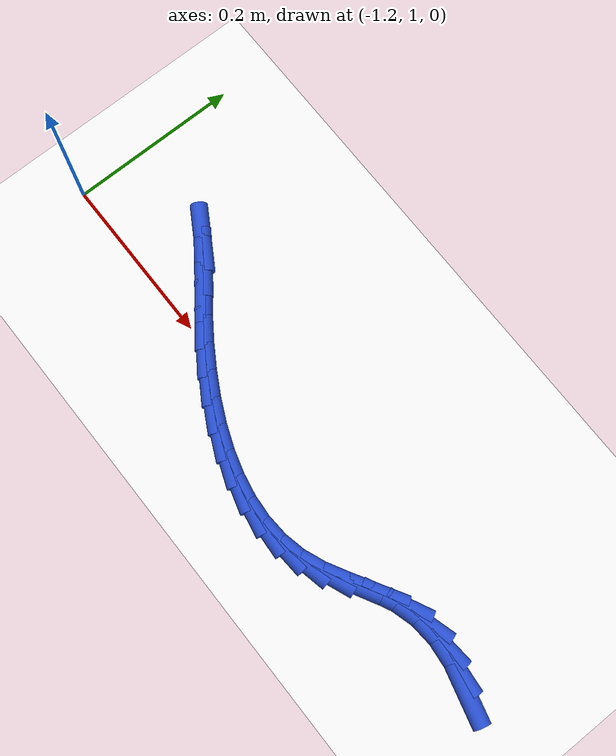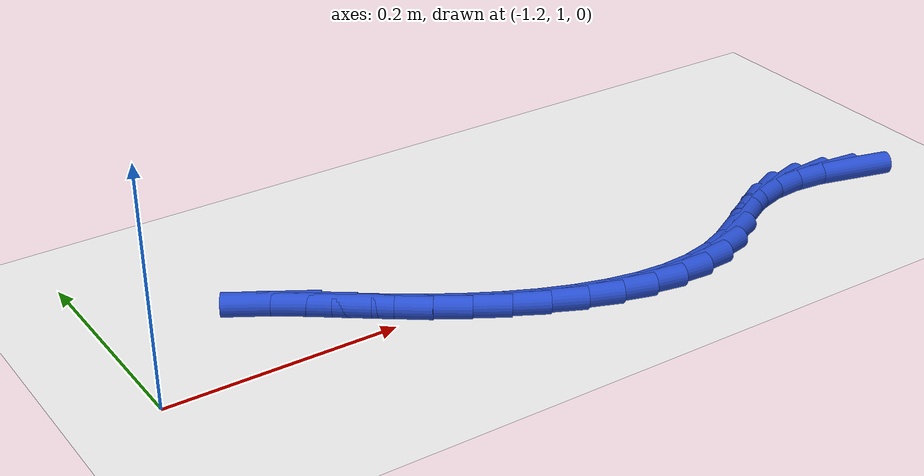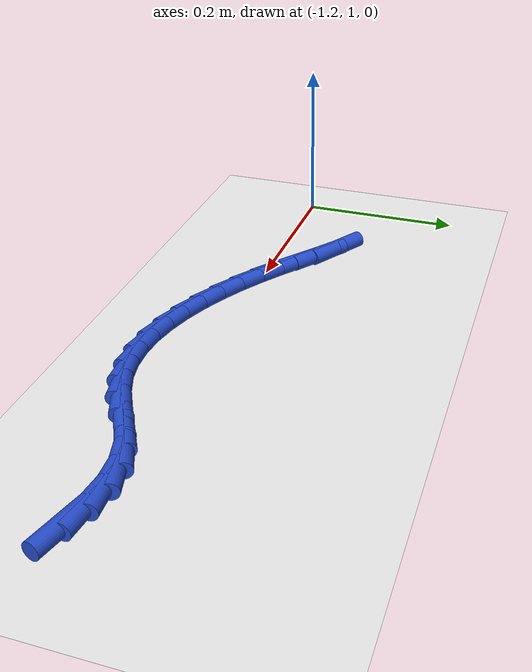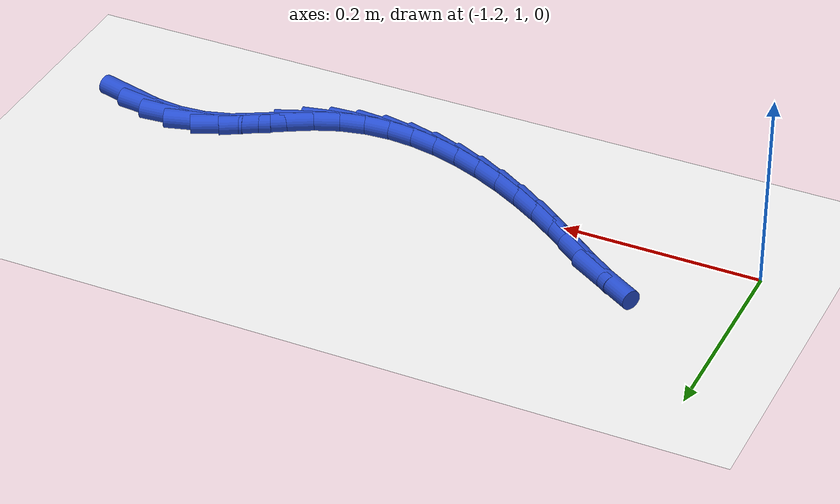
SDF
<sdf version="1.6">
 <world name="default">
  <model name="ground_plane">
   <static>1</static>
   <link name="link">
    <collision name="collision">
     <geometry><plane><normal>0 0 1</normal><size>100 100</size></plane></geometry>
     <surface><friction><ode><mu>100</mu><mu2>50</mu2></ode></friction></surface>
    </collision>
    <visual name="visual">
     <cast_shadows>0</cast_shadows>
     <geometry><plane><normal>0 0 1</normal><size>100 100</size></plane></geometry>
     <material>
      <script><uri>file://media/materials/scripts/gazebo.material</uri><name>Gazebo/WhiteGlow</name></script>
     </material>
    </visual>
   </link>
  </model>
  <model name="line">
   <link name="link_41">
    <pose>-0.5236453220515811 0.9870736413926657 0.01 0 1.57 -0.25498643271261234</pose>
    <collision name="collision">
     <geometry><cylinder><radius>0.01</radius><length>0.08</length></cylinder></geometry>
    </collision>
    <visual name="visual">
     <material>
      <script><name>Gazebo/Blue</name><uri>file://media/materials/scripts/gazebo.material</uri></script>
     </material>
     <geometry><cylinder><radius>0.01</radius><length>0.08</length></cylinder></geometry>
    </visual>
   </link>
   <link name="link_42">
    <pose>-0.5519061798899605 0.9944401245803717 0.01 0 1.57 -0.10034070326478406</pose>
    <collision name="collision">
     <geometry><cylinder><radius>0.01</radius><length>0.08</length></cylinder></geometry>
    </collision>
    <visual name="visual">
     <material>
      <script><name>Gazebo/Blue</name><uri>file://media/materials/scripts/gazebo.material</uri></script>
     </material>
     <geometry><cylinder><radius>0.01</radius><length>0.08</length></cylinder></geometry>
    </visual>
   </link>
   <link name="link_43">
    <pose>-0.5798885535445601 0.9972573568568668 0.01 0 1.57 0.07960655723129907</pose>
    <collision name="collision">
     <geometry><cylinder><radius>0.01</radius><length>0.08</length></cylinder></geometry>
    </collision>
    <visual name="visual">
     <material>
      <script><name>Gazebo/Blue</name><uri>file://media/materials/scripts/gazebo.material</uri></script>
     </material>
     <geometry><cylinder><radius>0.01</radius><length>0.08</length></cylinder></geometry>
    </visual>
   </link>
   <link name="link_44">
    <pose>-0.6071265721594638 0.9950844399562211 0.01 0 1.57 0.2834193827274493</pose>
    <collision name="collision">
     <geometry><cylinder><radius>0.01</radius><length>0.08</length></cylinder></geometry>
    </collision>
    <visual name="visual">
     <material>
      <script><name>Gazebo/Blue</name><uri>file://media/materials/scripts/gazebo.material</uri></script>
     </material>
     <geometry><cylinder><radius>0.01</radius><length>0.08</length></cylinder></geometry>
    </visual>
   </link>
   <link name="link_45">
    <pose>-0.6331618707111839 0.9875013961187414 0.01 0 1.57 0.4573855697178765</pose>
    <collision name="collision">
     <geometry><cylinder><radius>0.01</radius><length>0.08</length></cylinder></geometry>
    </collision>
    <visual name="visual">
     <material>
      <script><name>Gazebo/Blue</name><uri>file://media/materials/scripts/gazebo.material</uri></script>
     </material>
     <geometry><cylinder><radius>0.01</radius><length>0.08</length></cylinder></geometry>
    </visual>
   </link>
   <link name="link_46">
    <pose>-0.6579679394331743 0.9752919289461995 0.01 0 1.57 0.530949737364162</pose>
    <collision name="collision">
     <geometry><cylinder><radius>0.01</radius><length>0.08</length></cylinder></geometry>
    </collision>
    <visual name="visual">
     <material>
      <script><name>Gazebo/Blue</name><uri>file://media/materials/scripts/gazebo.material</uri></script>
     </material>
     <geometry><cylinder><radius>0.01</radius><length>0.08</length></cylinder></geometry>
    </visual>
   </link>
   <link name="link_47">
    <pose>-0.6821772209483101 0.961076396096303 0.01 0 1.57 0.505410260540674</pose>
    <collision name="collision">
     <geometry><cylinder><radius>0.01</radius><length>0.08</length></cylinder></geometry>
    </collision>
    <visual name="visual">
     <material>
      <script><name>Gazebo/Blue</name><uri>file://media/materials/scripts/gazebo.material</uri></script>
     </material>
     <geometry><cylinder><radius>0.01</radius><length>0.08</length></cylinder></geometry>
    </visual>
   </link>
   <link name="link_48">
    <pose>-0.7064776409796532 0.9476297995722853 0.01 0 1.57 0.381087394276146</pose>
    <collision name="collision">
     <geometry><cylinder><radius>0.01</radius><length>0.08</length></cylinder></geometry>
    </collision>
    <visual name="visual">
     <material>
      <script><name>Gazebo/Blue</name><uri>file://media/materials/scripts/gazebo.material</uri></script>
     </material>
     <geometry><cylinder><radius>0.01</radius><length>0.08</length></cylinder></geometry>
    </visual>
   </link>
   <link name="link_49">
    <pose>-0.7315201335684859 0.9375959204744445 0.01 0 1.57 0.21675197105116678</pose>
    <collision name="collision">
     <geometry><cylinder><radius>0.01</radius><length>0.08</length></cylinder></geometry>
    </collision>
    <visual name="visual">
     <material>
      <script><name>Gazebo/Blue</name><uri>file://media/materials/scripts/gazebo.material</uri></script>
     </material>
     <geometry><cylinder><radius>0.01</radius><length>0.08</length></cylinder></geometry>
    </visual>
   </link>
   <link name="link_50">
    <pose>-0.7574661811389911 0.9318823040779112 0.01 0 1.57 0.06422622571828837</pose>
    <collision name="collision">
     <geometry><cylinder><radius>0.01</radius><length>0.08</length></cylinder></geometry>
    </collision>
    <visual name="visual">
     <material>
      <script><name>Gazebo/Blue</name><uri>file://media/materials/scripts/gazebo.material</uri></script>
     </material>
     <geometry><cylinder><radius>0.01</radius><length>0.08</length></cylinder></geometry>
    </visual>
   </link>
   <link name="link_51">
    <pose>-0.7841307734382874 0.9301673792792858 0.01 0 1.57 -0.07108819385184693</pose>
    <collision name="collision">
     <geometry><cylinder><radius>0.01</radius><length>0.08</length></cylinder></geometry>
    </collision>
    <visual name="visual">
     <material>
      <script><name>Gazebo/Blue</name><uri>file://media/materials/scripts/gazebo.material</uri></script>
     </material>
     <geometry><cylinder><radius>0.01</radius><length>0.08</length></cylinder></geometry>
    </visual>
   </link>
   <link name="link_52">
    <pose>-0.8113215740590275 0.9321035868460066 0.01 0 1.57 -0.1881158327605718</pose>
    <collision name="collision">
     <geometry><cylinder><radius>0.01</radius><length>0.08</length></cylinder></geometry>
    </collision>
    <visual name="visual">
     <material>
      <script><name>Gazebo/Blue</name><uri>file://media/materials/scripts/gazebo.material</uri></script>
     </material>
     <geometry><cylinder><radius>0.01</radius><length>0.08</length></cylinder></geometry>
    </visual>
   </link>
   <link name="link_53">
    <pose>-0.8388462465938653 0.9373433675455118 0.01 0 1.57 -0.2880022688724127</pose>
    <collision name="collision">
     <geometry><cylinder><radius>0.01</radius><length>0.08</length></cylinder></geometry>
    </collision>
    <visual name="visual">
     <material>
      <script><name>Gazebo/Blue</name><uri>file://media/materials/scripts/gazebo.material</uri></script>
     </material>
     <geometry><cylinder><radius>0.01</radius><length>0.08</length></cylinder></geometry>
    </visual>
   </link>
   <link name="link_54">
    <pose>-0.8665124546354538 0.945539162145239 0.01 0 1.57 -0.37293183494573295</pose>
    <collision name="collision">
     <geometry><cylinder><radius>0.01</radius><length>0.08</length></cylinder></geometry>
    </collision>
    <visual name="visual">
     <material>
      <script><name>Gazebo/Blue</name><uri>file://media/materials/scripts/gazebo.material</uri></script>
     </material>
     <geometry><cylinder><radius>0.01</radius><length>0.08</length></cylinder></geometry>
    </visual>
   </link>
   <link name="link_55">
    <pose>-0.8941278617764461 0.9563434114126266 0.01 0 1.57 -0.44533397743568104</pose>
    <collision name="collision">
     <geometry><cylinder><radius>0.01</radius><length>0.08</length></cylinder></geometry>
    </collision>
    <visual name="visual">
     <material>
      <script><name>Gazebo/Blue</name><uri>file://media/materials/scripts/gazebo.material</uri></script>
     </material>
     <geometry><cylinder><radius>0.01</radius><length>0.08</length></cylinder></geometry>
    </visual>
   </link>
   <link name="link_56">
    <pose>-0.9215001316094951 0.969408556115112 0.01 0 1.57 -0.5074840652584793</pose>
    <collision name="collision">
     <geometry><cylinder><radius>0.01</radius><length>0.08</length></cylinder></geometry>
    </collision>
    <visual name="visual">
     <material>
      <script><name>Gazebo/Blue</name><uri>file://media/materials/scripts/gazebo.material</uri></script>
     </material>
     <geometry><cylinder><radius>0.01</radius><length>0.08</length></cylinder></geometry>
    </visual>
   </link>
   <link name="link_57">
    <pose>-0.948436927727254 0.9843870370201335 0.01 0 1.57 -0.5613590349849608</pose>
    <collision name="collision">
     <geometry><cylinder><radius>0.01</radius><length>0.08</length></cylinder></geometry>
    </collision>
    <visual name="visual">
     <material>
      <script><name>Gazebo/Blue</name><uri>file://media/materials/scripts/gazebo.material</uri></script>
     </material>
     <geometry><cylinder><radius>0.01</radius><length>0.08</length></cylinder></geometry>
    </visual>
   </link>
   <link name="link_58">
    <pose>-0.9747459137223766 1.0009312948951292 0.01 0 1.57 -0.6086189616180934</pose>
    <collision name="collision">
     <geometry><cylinder><radius>0.01</radius><length>0.08</length></cylinder></geometry>
    </collision>
    <visual name="visual">
     <material>
      <script><name>Gazebo/Blue</name><uri>file://media/materials/scripts/gazebo.material</uri></script>
     </material>
     <geometry><cylinder><radius>0.01</radius><length>0.08</length></cylinder></geometry>
    </visual>
   </link>
   <link name="link_59">
    <pose>-1.0002348231963687 1.0186936285054902 0.01 0 1.57 -0.6443190302506676</pose>
    <collision name="collision">
     <geometry><cylinder><radius>0.01</radius><length>0.08</length></cylinder></geometry>
    </collision>
    <visual name="visual">
     <material>
      <script><name>Gazebo/Blue</name><uri>file://media/materials/scripts/gazebo.material</uri></script>
     </material>
     <geometry><cylinder><radius>0.01</radius><length>0.08</length></cylinder></geometry>
    </visual>
   </link>
   <link name="link_60">
    <pose>-1.0247991652824797 1.0371482976319577 0.01 0 1.57 -0.6501810663338972</pose>
    <collision name="collision">
     <geometry><cylinder><radius>0.01</radius><length>0.08</length></cylinder></geometry>
    </collision>
    <visual name="visual">
     <material>
      <script><name>Gazebo/Blue</name><uri>file://media/materials/scripts/gazebo.material</uri></script>
     </material>
     <geometry><cylinder><radius>0.01</radius><length>0.08</length></cylinder></geometry>
    </visual>
   </link>
   <link name="link_61">
    <pose>-1.0485936660263524 1.0552437809523874 0.01 0 1.57 -0.6201773716894817</pose>
    <collision name="collision">
     <geometry><cylinder><radius>0.01</radius><length>0.08</length></cylinder></geometry>
    </collision>
    <visual name="visual">
     <material>
      <script><name>Gazebo/Blue</name><uri>file://media/materials/scripts/gazebo.material</uri></script>
     </material>
     <geometry><cylinder><radius>0.01</radius><length>0.08</length></cylinder></geometry>
    </visual>
   </link>
   <link name="link_62">
    <pose>-1.071820670645292 1.0718319690772693 0.01 0 1.57 -0.5473271670408135</pose>
    <collision name="collision">
     <geometry><cylinder><radius>0.01</radius><length>0.08</length></cylinder></geometry>
    </collision>
    <visual name="visual">
     <material>
      <script><name>Gazebo/Blue</name><uri>file://media/materials/scripts/gazebo.material</uri></script>
     </material>
     <geometry><cylinder><radius>0.01</radius><length>0.08</length></cylinder></geometry>
    </visual>
   </link>
  </model>
 </world>
</sdf>
